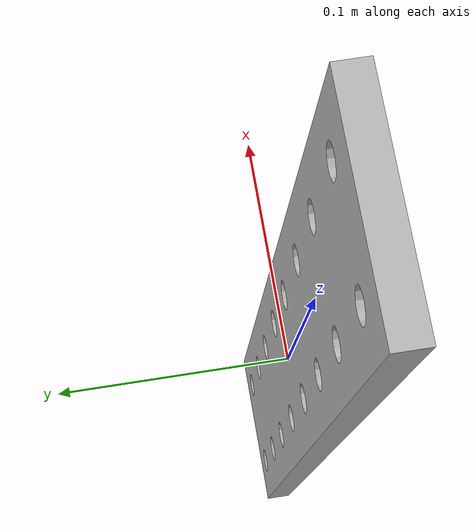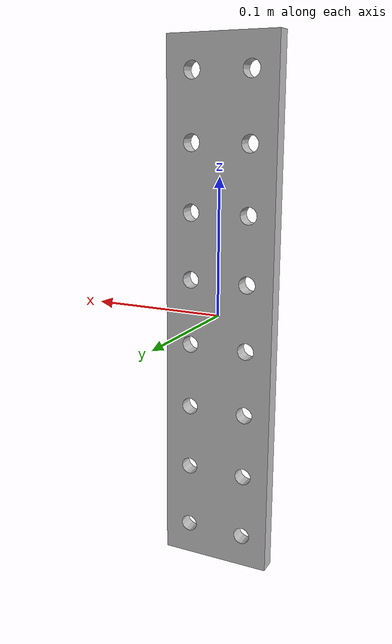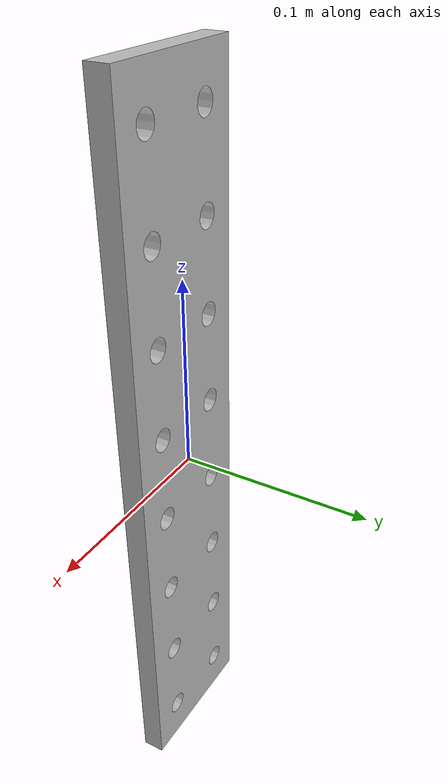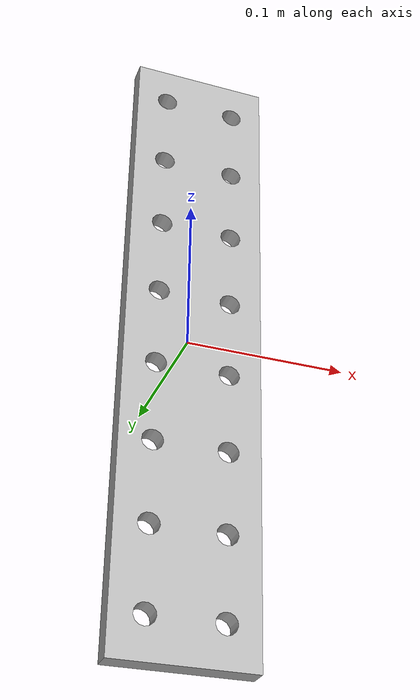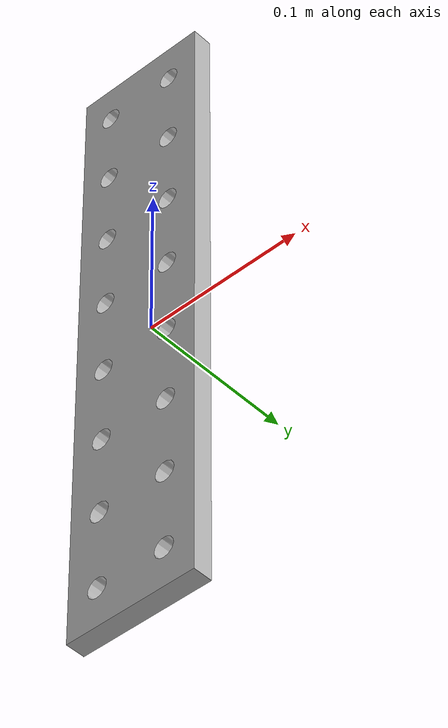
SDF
<?xml version='1.0'?>
<sdf version='1.4'>
  <model name="FGAG1002_PLACA_AGUJEREADA_1">
 <static>false</static>
 <link name="mesh_link">
	<inertial>
            <mass>100.0</mass>
 	</inertial>
        <visual name="visual">
        <geometry>
            <mesh><uri>model://FGAG1002_PLACA_AGUJEREADA_1/meshes/FGAG1002_PLACA_AGUJEREADA_1.stl</uri></mesh>
          </geometry>
        </visual>
        <collision name="collision">
          <geometry>
            <mesh><uri>model://FGAG1002_PLACA_AGUJEREADA_1/meshes/FGAG1002_PLACA_AGUJEREADA_1.stl</uri></mesh>
          </geometry>
        </collision>
      </link>
  </model>
</sdf>
